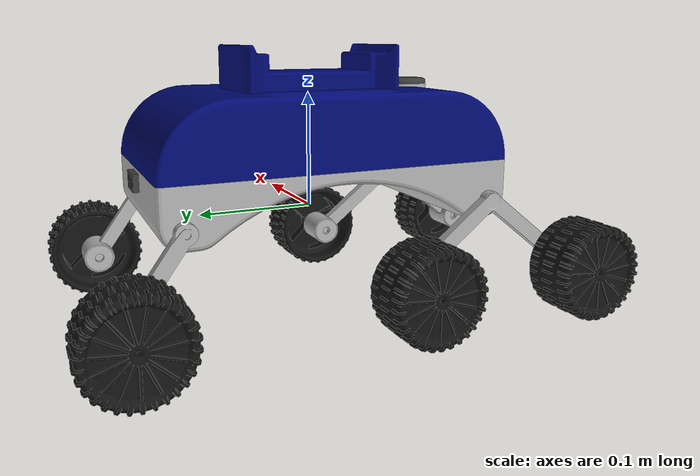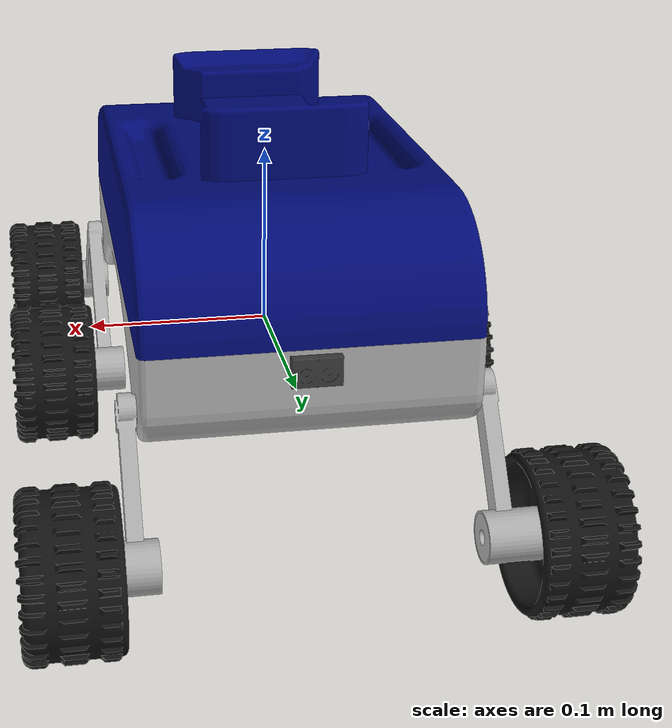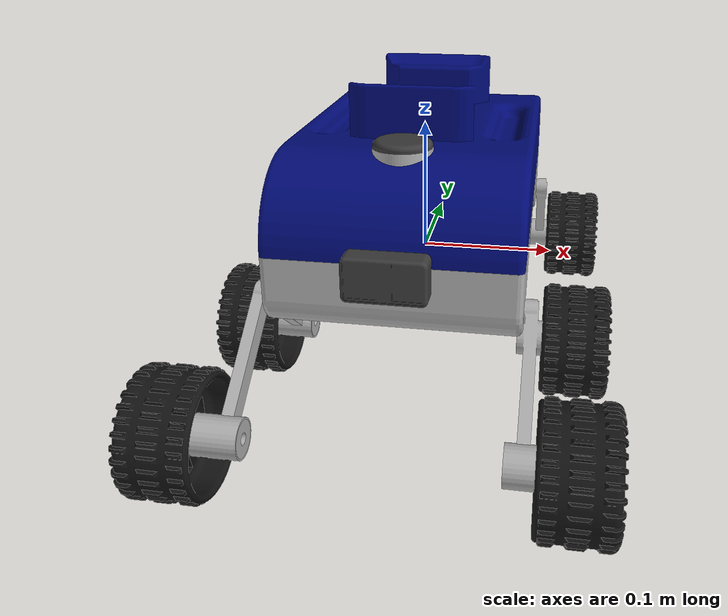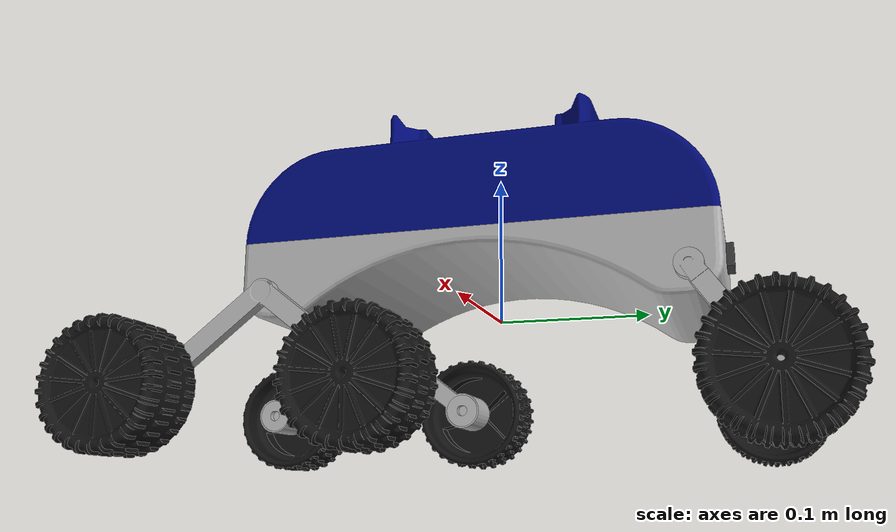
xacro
<?xml version="1.0" ?>
<robot name="rover_urdf_final" xmlns:xacro="http://www.ros.org/wiki/xacro">

<xacro:include filename="$(find rover_urdf_final_description)/urdf/materials.xacro" />
<xacro:include filename="$(find rover_urdf_final_description)/urdf/rover_urdf_final.trans" />
<xacro:include filename="$(find rover_urdf_final_description)/urdf/rover_urdf_final.gazebo" />
<link name="dummy">
</link>
<link name="base_link">
  <inertial>
    <origin xyz="9.73727173091227e-05 0.0012138128629390122 0.021729704936012603" rpy="0 0 0"/>
    <mass value="1.0018651197742647"/>
    <inertia ixx="0.011025" iyy="0.00289" izz="0.013559" ixy="-0.0" iyz="-1.3e-05" ixz="-0.0"/>
  </inertial>
  <visual>
    <origin xyz="0 0 0" rpy="0 0 0"/>
    <geometry>
      <mesh filename="package://rover_urdf_final_description/meshes/base_link.stl" scale="0.001 0.001 0.001"/>
    </geometry>
    <material name="silver"/>
  </visual>
  <collision>
    <origin xyz="0 0 0" rpy="0 0 0"/>
    <geometry>
      <mesh filename="package://rover_urdf_final_description/meshes/base_link.stl" scale="0.001 0.001 0.001"/>
    </geometry>
  </collision>
</link>

<link name="back_camera_1">
  <inertial>
    <origin xyz="3.701246455232982e-07 0.009962676017348127 -0.001998185934772738" rpy="0 0 0"/>
    <mass value="0.007636091553825904"/>
    <inertia ixx="0.0" iyy="1e-06" izz="1e-06" ixy="0.0" iyz="-0.0" ixz="-0.0"/>
  </inertial>
  <visual>
    <origin xyz="-9.7e-05 -0.135 -0.036" rpy="0 0 0"/>
    <geometry>
      <mesh filename="package://rover_urdf_final_description/meshes/back_camera_1.stl" scale="0.001 0.001 0.001"/>
    </geometry>
    <material name="gray060060060"/>
  </visual>
  <collision>
    <origin xyz="-9.7e-05 -0.135 -0.036" rpy="0 0 0"/>
    <geometry>
      <mesh filename="package://rover_urdf_final_description/meshes/back_camera_1.stl" scale="0.001 0.001 0.001"/>
    </geometry>
  </collision>
</link>

<link name="cover_1">
  <inertial>
    <origin xyz="3.7207553096138427e-07 -0.1479961400556021 0.045934334251646364" rpy="0 0 0"/>
    <mass value="0.6079631145490499"/>
    <inertia ixx="0.004866" iyy="0.002425" izz="0.006674" ixy="-0.0" iyz="1.2e-05" ixz="-0.0"/>
  </inertial>
  <visual>
    <origin xyz="-9.7e-05 -0.15 -0.044" rpy="0 0 0"/>
    <geometry>
      <mesh filename="package://rover_urdf_final_description/meshes/cover_1.stl" scale="0.001 0.001 0.001"/>
    </geometry>
    <material name="blue000010119"/>
  </visual>
  <collision>
    <origin xyz="-9.7e-05 -0.15 -0.044" rpy="0 0 0"/>
    <geometry>
      <mesh filename="package://rover_urdf_final_description/meshes/cover_1.stl" scale="0.001 0.001 0.001"/>
    </geometry>
  </collision>
</link>

<link name="lidar_1">
  <inertial>
    <origin xyz="1.301477999011825e-06 -0.00035540064376651803 0.0027852932894022048" rpy="0 0 0"/>
    <mass value="0.0025453141239423793"/>
    <inertia ixx="0.0" iyy="0.0" izz="1e-06" ixy="0.0" iyz="0.0" ixz="-0.0"/>
  </inertial>
  <visual>
    <origin xyz="-9.7e-05 0.095 -0.104" rpy="0 0 0"/>
    <geometry>
      <mesh filename="package://rover_urdf_final_description/meshes/lidar_1.stl" scale="0.001 0.001 0.001"/>
    </geometry>
    <material name="gray060060060"/>
  </visual>
  <collision>
    <origin xyz="-9.7e-05 0.095 -0.104" rpy="0 0 0"/>
    <geometry>
      <mesh filename="package://rover_urdf_final_description/meshes/lidar_1.stl" scale="0.001 0.001 0.001"/>
    </geometry>
  </collision>
</link>

<link name="lidar_base_1">
  <inertial>
    <origin xyz="3.72717310966419e-07 -5.8676480341191e-10 0.0020286500600458224" rpy="0 0 0"/>
    <mass value="0.007902916123399852"/>
    <inertia ixx="1e-06" iyy="1e-06" izz="2e-06" ixy="0.0" iyz="0.0" ixz="0.0"/>
  </inertial>
  <visual>
    <origin xyz="-9.7e-05 0.095 -0.099" rpy="0 0 0"/>
    <geometry>
      <mesh filename="package://rover_urdf_final_description/meshes/lidar_base_1.stl" scale="0.001 0.001 0.001"/>
    </geometry>
    <material name="silver"/>
  </visual>
  <collision>
    <origin xyz="-9.7e-05 0.095 -0.099" rpy="0 0 0"/>
    <geometry>
      <mesh filename="package://rover_urdf_final_description/meshes/lidar_base_1.stl" scale="0.001 0.001 0.001"/>
    </geometry>
  </collision>
</link>

<link name="battery1_1">
  <inertial>
    <origin xyz="3.727173095088854e-07 -0.007391188756240213 0.018000268857447127" rpy="0 0 0"/>
    <mass value="0.9478473192809529"/>
    <inertia ixx="0.002816" iyy="0.000605" izz="0.003091" ixy="0.0" iyz="-0.0" ixz="0.0"/>
  </inertial>
  <visual>
    <origin xyz="0.039903 -0.025 -0.039" rpy="0 0 0"/>
    <geometry>
      <mesh filename="package://rover_urdf_final_description/meshes/battery1_1.stl" scale="0.001 0.001 0.001"/>
    </geometry>
    <material name="gray110110110"/>
  </visual>
  <collision>
    <origin xyz="0.039903 -0.025 -0.039" rpy="0 0 0"/>
    <geometry>
      <mesh filename="package://rover_urdf_final_description/meshes/battery1_1.stl" scale="0.001 0.001 0.001"/>
    </geometry>
  </collision>
</link>

<link name="battery2_1">
  <inertial>
    <origin xyz="3.727173090301017e-07 -0.0073911887562401885 0.018000268857447065" rpy="0 0 0"/>
    <mass value="0.9478473192809556"/>
    <inertia ixx="0.002816" iyy="0.000605" izz="0.003091" ixy="-0.0" iyz="-0.0" ixz="-0.0"/>
  </inertial>
  <visual>
    <origin xyz="-0.040097 -0.025 -0.039" rpy="0 0 0"/>
    <geometry>
      <mesh filename="package://rover_urdf_final_description/meshes/battery2_1.stl" scale="0.001 0.001 0.001"/>
    </geometry>
    <material name="gray110110110"/>
  </visual>
  <collision>
    <origin xyz="-0.040097 -0.025 -0.039" rpy="0 0 0"/>
    <geometry>
      <mesh filename="package://rover_urdf_final_description/meshes/battery2_1.stl" scale="0.001 0.001 0.001"/>
    </geometry>
  </collision>
</link>

<link name="camera_1">
  <inertial>
    <origin xyz="3.7271731244317013e-07 -0.014608125530224086 0.014992719298696291" rpy="0 0 0"/>
    <mass value="0.04851657201774763"/>
    <inertia ixx="7e-06" iyy="1.6e-05" izz="1.5e-05" ixy="-0.0" iyz="-0.0" ixz="0.0"/>
  </inertial>
  <visual>
    <origin xyz="-9.7e-05 0.135 -0.024" rpy="0 0 0"/>
    <geometry>
      <mesh filename="package://rover_urdf_final_description/meshes/camera_1.stl" scale="0.001 0.001 0.001"/>
    </geometry>
    <material name="gray060060060"/>
  </visual>
  <collision>
    <origin xyz="-9.7e-05 0.135 -0.024" rpy="0 0 0"/>
    <geometry>
      <mesh filename="package://rover_urdf_final_description/meshes/camera_1.stl" scale="0.001 0.001 0.001"/>
    </geometry>
  </collision>
</link>

<link name="rov_leg12_1">
  <inertial>
    <origin xyz="0.005609983333545093 -1.438016372645734e-13 -0.03362118819507126" rpy="0 0 0"/>
    <mass value="0.022576009218286616"/>
    <inertia ixx="8.4e-05" iyy="1.6e-05" izz="7e-05" ixy="-0.0" iyz="0.0" ixz="2e-06"/>
  </inertial>
  <visual>
    <origin xyz="-0.085097 0.13125 -0.010238" rpy="0 0 0"/>
    <geometry>
      <mesh filename="package://rover_urdf_final_description/meshes/rov_leg12_1.stl" scale="0.001 0.001 0.001"/>
    </geometry>
    <material name="silver"/>
  </visual>
  <collision>
    <origin xyz="-0.085097 0.13125 -0.010238" rpy="0 0 0"/>
    <geometry>
      <mesh filename="package://rover_urdf_final_description/meshes/rov_leg12_1.stl" scale="0.001 0.001 0.001"/>
    </geometry>
  </collision>
</link>

<link name="rov_leg5_1">
  <inertial>
    <origin xyz="0.004802285907086354 0.01980785029740345 -0.02773074523797488" rpy="0 0 0"/>
    <mass value="0.01719642610594522"/>
    <inertia ixx="1.6e-05" iyy="1.1e-05" izz="6e-06" ixy="-1e-06" iyz="7e-06" ixz="1e-06"/>
  </inertial>
  <visual>
    <origin xyz="-0.085097 -0.13125 -0.010238" rpy="0 0 0"/>
    <geometry>
      <mesh filename="package://rover_urdf_final_description/meshes/rov_leg5_1.stl" scale="0.001 0.001 0.001"/>
    </geometry>
    <material name="silver"/>
  </visual>
  <collision>
    <origin xyz="-0.085097 -0.13125 -0.010238" rpy="0 0 0"/>
    <geometry>
      <mesh filename="package://rover_urdf_final_description/meshes/rov_leg5_1.stl" scale="0.001 0.001 0.001"/>
    </geometry>
  </collision>
</link>

<link name="rov_leg6_1">
  <inertial>
    <origin xyz="-0.004801540472467947 0.01980785029741436 -0.02773074523797489" rpy="0 0 0"/>
    <mass value="0.017196426105945264"/>
    <inertia ixx="1.6e-05" iyy="1.1e-05" izz="6e-06" ixy="1e-06" iyz="7e-06" ixz="-1e-06"/>
  </inertial>
  <visual>
    <origin xyz="0.084903 -0.13125 -0.010238" rpy="0 0 0"/>
    <geometry>
      <mesh filename="package://rover_urdf_final_description/meshes/rov_leg6_1.stl" scale="0.001 0.001 0.001"/>
    </geometry>
    <material name="silver"/>
  </visual>
  <collision>
    <origin xyz="0.084903 -0.13125 -0.010238" rpy="0 0 0"/>
    <geometry>
      <mesh filename="package://rover_urdf_final_description/meshes/rov_leg6_1.stl" scale="0.001 0.001 0.001"/>
    </geometry>
  </collision>
</link>

<link name="dc_motar1_1">
  <inertial>
    <origin xyz="0.017000372717312792 -4.331063132578805e-07 1.1269990159851195e-07" rpy="0 0 0"/>
    <mass value="0.10732685814311863"/>
    <inertia ixx="9e-06" iyy="1.5e-05" izz="1.5e-05" ixy="-0.0" iyz="0.0" ixz="0.0"/>
  </inertial>
  <visual>
    <origin xyz="-0.079297 0.210086 0.05047" rpy="0 0 0"/>
    <geometry>
      <mesh filename="package://rover_urdf_final_description/meshes/dc_motar1_1.stl" scale="0.001 0.001 0.001"/>
    </geometry>
    <material name="silver"/>
  </visual>
  <collision>
    <origin xyz="-0.079297 0.210086 0.05047" rpy="0 0 0"/>
    <geometry>
      <mesh filename="package://rover_urdf_final_description/meshes/dc_motar1_1.stl" scale="0.001 0.001 0.001"/>
    </geometry>
  </collision>
</link>

<link name="dc_motar2_1">
  <inertial>
    <origin xyz="0.017000372717312695 4.331062625137494e-07 1.1269990162626753e-07" rpy="0 0 0"/>
    <mass value="0.10732685814311868"/>
    <inertia ixx="9e-06" iyy="1.5e-05" izz="1.5e-05" ixy="0.0" iyz="0.0" ixz="0.0"/>
  </inertial>
  <visual>
    <origin xyz="-0.079297 0.052414 0.05047" rpy="0 0 0"/>
    <geometry>
      <mesh filename="package://rover_urdf_final_description/meshes/dc_motar2_1.stl" scale="0.001 0.001 0.001"/>
    </geometry>
    <material name="silver"/>
  </visual>
  <collision>
    <origin xyz="-0.079297 0.052414 0.05047" rpy="0 0 0"/>
    <geometry>
      <mesh filename="package://rover_urdf_final_description/meshes/dc_motar2_1.stl" scale="0.001 0.001 0.001"/>
    </geometry>
  </collision>
</link>

<link name="dc_motar4_1">
  <inertial>
    <origin xyz="-0.016999627282694274 4.331062625206883e-07 1.1269990164014532e-07" rpy="0 0 0"/>
    <mass value="0.1073268581431187"/>
    <inertia ixx="9e-06" iyy="1.5e-05" izz="1.5e-05" ixy="0.0" iyz="0.0" ixz="0.0"/>
  </inertial>
  <visual>
    <origin xyz="0.079103 0.052414 0.05047" rpy="0 0 0"/>
    <geometry>
      <mesh filename="package://rover_urdf_final_description/meshes/dc_motar4_1.stl" scale="0.001 0.001 0.001"/>
    </geometry>
    <material name="silver"/>
  </visual>
  <collision>
    <origin xyz="0.079103 0.052414 0.05047" rpy="0 0 0"/>
    <geometry>
      <mesh filename="package://rover_urdf_final_description/meshes/dc_motar4_1.stl" scale="0.001 0.001 0.001"/>
    </geometry>
  </collision>
</link>

<link name="dc_motar6_1">
  <inertial>
    <origin xyz="-0.016999627282694663 3.6552571042181015e-07 1.3344237432405537e-07" rpy="0 0 0"/>
    <mass value="0.1073268581431187"/>
    <inertia ixx="9e-06" iyy="1.5e-05" izz="1.5e-05" ixy="0.0" iyz="0.0" ixz="0.0"/>
  </inertial>
  <visual>
    <origin xyz="0.079103 -0.175169 0.051249" rpy="0 0 0"/>
    <geometry>
      <mesh filename="package://rover_urdf_final_description/meshes/dc_motar6_1.stl" scale="0.001 0.001 0.001"/>
    </geometry>
    <material name="silver"/>
  </visual>
  <collision>
    <origin xyz="0.079103 -0.175169 0.051249" rpy="0 0 0"/>
    <geometry>
      <mesh filename="package://rover_urdf_final_description/meshes/dc_motar6_1.stl" scale="0.001 0.001 0.001"/>
    </geometry>
  </collision>
</link>

<link name="rov_leg34_1">
  <inertial>
    <origin xyz="-0.0056092378989267 1.168232177661821e-13 -0.033621188195070345" rpy="0 0 0"/>
    <mass value="0.022576009218287667"/>
    <inertia ixx="8.4e-05" iyy="1.6e-05" izz="7e-05" ixy="0.0" iyz="-0.0" ixz="-2e-06"/>
  </inertial>
  <visual>
    <origin xyz="0.084903 0.13125 -0.010238" rpy="0 0 0"/>
    <geometry>
      <mesh filename="package://rover_urdf_final_description/meshes/rov_leg34_1.stl" scale="0.001 0.001 0.001"/>
    </geometry>
    <material name="silver"/>
  </visual>
  <collision>
    <origin xyz="0.084903 0.13125 -0.010238" rpy="0 0 0"/>
    <geometry>
      <mesh filename="package://rover_urdf_final_description/meshes/rov_leg34_1.stl" scale="0.001 0.001 0.001"/>
    </geometry>
  </collision>
</link>

<link name="dc_motar6_axle__1">
  <inertial>
    <origin xyz="-0.01229962728269142 3.6552552762358914e-07 1.3344237424772754e-07" rpy="0 0 0"/>
    <mass value="0.01894003378996254"/>
    <inertia ixx="0.0" iyy="4e-06" izz="4e-06" ixy="0.0" iyz="-0.0" ixz="0.0"/>
  </inertial>
  <visual>
    <origin xyz="0.096103 -0.175169 0.051249" rpy="0 0 0"/>
    <geometry>
      <mesh filename="package://rover_urdf_final_description/meshes/dc_motar6_axle__1.stl" scale="0.001 0.001 0.001"/>
    </geometry>
    <material name="silver"/>
  </visual>
  <collision>
    <origin xyz="0.096103 -0.175169 0.051249" rpy="0 0 0"/>
    <geometry>
      <mesh filename="package://rover_urdf_final_description/meshes/dc_motar6_axle__1.stl" scale="0.001 0.001 0.001"/>
    </geometry>
  </collision>
</link>

<link name="dc_motar4_axle_1">
  <inertial>
    <origin xyz="-0.012299627282694126 4.3310607952817826e-07 1.1269990164014532e-07" rpy="0 0 0"/>
    <mass value="0.018940033789962563"/>
    <inertia ixx="0.0" iyy="4e-06" izz="4e-06" ixy="0.0" iyz="-0.0" ixz="-0.0"/>
  </inertial>
  <visual>
    <origin xyz="0.096103 0.052414 0.05047" rpy="0 0 0"/>
    <geometry>
      <mesh filename="package://rover_urdf_final_description/meshes/dc_motar4_axle_1.stl" scale="0.001 0.001 0.001"/>
    </geometry>
    <material name="silver"/>
  </visual>
  <collision>
    <origin xyz="0.096103 0.052414 0.05047" rpy="0 0 0"/>
    <geometry>
      <mesh filename="package://rover_urdf_final_description/meshes/dc_motar4_axle_1.stl" scale="0.001 0.001 0.001"/>
    </geometry>
  </collision>
</link>

<link name="dc_motar2_axle_1">
  <inertial>
    <origin xyz="0.01230037271731274 4.331060795073616e-07 1.1269990161932864e-07" rpy="0 0 0"/>
    <mass value="0.01894003378996253"/>
    <inertia ixx="0.0" iyy="4e-06" izz="4e-06" ixy="-0.0" iyz="0.0" ixz="-0.0"/>
  </inertial>
  <visual>
    <origin xyz="-0.096297 0.052414 0.05047" rpy="0 0 0"/>
    <geometry>
      <mesh filename="package://rover_urdf_final_description/meshes/dc_motar2_axle_1.stl" scale="0.001 0.001 0.001"/>
    </geometry>
    <material name="silver"/>
  </visual>
  <collision>
    <origin xyz="-0.096297 0.052414 0.05047" rpy="0 0 0"/>
    <geometry>
      <mesh filename="package://rover_urdf_final_description/meshes/dc_motar2_axle_1.stl" scale="0.001 0.001 0.001"/>
    </geometry>
  </collision>
</link>

<link name="dc_motar1_axle_1">
  <inertial>
    <origin xyz="0.012300372717312713 -4.33106496416924e-07 1.1269990156381748e-07" rpy="0 0 0"/>
    <mass value="0.018940033789962514"/>
    <inertia ixx="0.0" iyy="4e-06" izz="4e-06" ixy="-0.0" iyz="0.0" ixz="-0.0"/>
  </inertial>
  <visual>
    <origin xyz="-0.096297 0.210086 0.05047" rpy="0 0 0"/>
    <geometry>
      <mesh filename="package://rover_urdf_final_description/meshes/dc_motar1_axle_1.stl" scale="0.001 0.001 0.001"/>
    </geometry>
    <material name="silver"/>
  </visual>
  <collision>
    <origin xyz="-0.096297 0.210086 0.05047" rpy="0 0 0"/>
    <geometry>
      <mesh filename="package://rover_urdf_final_description/meshes/dc_motar1_axle_1.stl" scale="0.001 0.001 0.001"/>
    </geometry>
  </collision>
</link>

<link name="dc_motar5_1">
  <inertial>
    <origin xyz="0.017000372717313028 3.655257104773213e-07 1.3344237431711647e-07" rpy="0 0 0"/>
    <mass value="0.10732685814311864"/>
    <inertia ixx="9e-06" iyy="1.5e-05" izz="1.5e-05" ixy="0.0" iyz="0.0" ixz="-0.0"/>
  </inertial>
  <visual>
    <origin xyz="-0.079297 -0.175169 0.051249" rpy="0 0 0"/>
    <geometry>
      <mesh filename="package://rover_urdf_final_description/meshes/dc_motar5_1.stl" scale="0.001 0.001 0.001"/>
    </geometry>
    <material name="silver"/>
  </visual>
  <collision>
    <origin xyz="-0.079297 -0.175169 0.051249" rpy="0 0 0"/>
    <geometry>
      <mesh filename="package://rover_urdf_final_description/meshes/dc_motar5_1.stl" scale="0.001 0.001 0.001"/>
    </geometry>
  </collision>
</link>

<link name="dc_motar5_axle_1">
  <inertial>
    <origin xyz="0.012300372717309965 3.65525527568078e-07 1.3344237426160532e-07" rpy="0 0 0"/>
    <mass value="0.018940033789962514"/>
    <inertia ixx="0.0" iyy="4e-06" izz="4e-06" ixy="-0.0" iyz="-0.0" ixz="-0.0"/>
  </inertial>
  <visual>
    <origin xyz="-0.096297 -0.175169 0.051249" rpy="0 0 0"/>
    <geometry>
      <mesh filename="package://rover_urdf_final_description/meshes/dc_motar5_axle_1.stl" scale="0.001 0.001 0.001"/>
    </geometry>
    <material name="silver"/>
  </visual>
  <collision>
    <origin xyz="-0.096297 -0.175169 0.051249" rpy="0 0 0"/>
    <geometry>
      <mesh filename="package://rover_urdf_final_description/meshes/dc_motar5_axle_1.stl" scale="0.001 0.001 0.001"/>
    </geometry>
  </collision>
</link>

<link name="wheel5_1">
  <inertial>
    <origin xyz="-0.006171448537778512 6.866532474281151e-07 9.644803717484551e-08" rpy="0 0 0"/>
    <mass value="0.14717103101615037"/>
    <inertia ixx="0.000148" iyy="9.4e-05" izz="9.4e-05" ixy="-0.0" iyz="-0.0" ixz="0.0"/>
  </inertial>
  <visual>
    <origin xyz="-0.132597 -0.175169 0.051249" rpy="0 0 0"/>
    <geometry>
      <mesh filename="package://rover_urdf_final_description/meshes/wheel5_1.stl" scale="0.001 0.001 0.001"/>
    </geometry>
    <material name="dark_gray"/>
  </visual>
  <collision>
    <origin xyz="-0.132597 -0.175169 0.051249" rpy="0 0 0"/>
    <geometry>
      <mesh filename="package://rover_urdf_final_description/meshes/wheel5_1.stl" scale="0.001 0.001 0.001"/>
    </geometry>
  </collision>
</link>

<link name="wheel6_1">
  <inertial>
    <origin xyz="0.006172299290002181 5.652758307828076e-07 1.1981204132288648e-07" rpy="0 0 0"/>
    <mass value="0.14717008048990332"/>
    <inertia ixx="0.000148" iyy="9.4e-05" izz="9.4e-05" ixy="0.0" iyz="-0.0" ixz="-0.0"/>
  </inertial>
  <visual>
    <origin xyz="0.132403 -0.175169 0.051249" rpy="0 0 0"/>
    <geometry>
      <mesh filename="package://rover_urdf_final_description/meshes/wheel6_1.stl" scale="0.001 0.001 0.001"/>
    </geometry>
    <material name="dark_gray"/>
  </visual>
  <collision>
    <origin xyz="0.132403 -0.175169 0.051249" rpy="0 0 0"/>
    <geometry>
      <mesh filename="package://rover_urdf_final_description/meshes/wheel6_1.stl" scale="0.001 0.001 0.001"/>
    </geometry>
  </collision>
</link>

<link name="wheel4_1">
  <inertial>
    <origin xyz="0.0055722992838171115 6.305114903029652e-07 9.907759485061618e-08" rpy="0 0 0"/>
    <mass value="0.1471700804899019"/>
    <inertia ixx="0.000148" iyy="9.4e-05" izz="9.4e-05" ixy="0.0" iyz="-0.0" ixz="-0.0"/>
  </inertial>
  <visual>
    <origin xyz="0.132403 0.052414 0.05047" rpy="0 0 0"/>
    <geometry>
      <mesh filename="package://rover_urdf_final_description/meshes/wheel4_1.stl" scale="0.001 0.001 0.001"/>
    </geometry>
    <material name="dark_gray"/>
  </visual>
  <collision>
    <origin xyz="0.132403 0.052414 0.05047" rpy="0 0 0"/>
    <geometry>
      <mesh filename="package://rover_urdf_final_description/meshes/wheel4_1.stl" scale="0.001 0.001 0.001"/>
    </geometry>
  </collision>
</link>

<link name="wheel3_1">
  <inertial>
    <origin xyz="0.005572299283817556 -2.373256621224229e-07 9.907759478816613e-08" rpy="0 0 0"/>
    <mass value="0.1471700804899019"/>
    <inertia ixx="0.000148" iyy="9.4e-05" izz="9.4e-05" ixy="0.0" iyz="-0.0" ixz="-0.0"/>
  </inertial>
  <visual>
    <origin xyz="0.132403 0.210086 0.05047" rpy="0 0 0"/>
    <geometry>
      <mesh filename="package://rover_urdf_final_description/meshes/wheel3_1.stl" scale="0.001 0.001 0.001"/>
    </geometry>
    <material name="dark_gray"/>
  </visual>
  <collision>
    <origin xyz="0.132403 0.210086 0.05047" rpy="0 0 0"/>
    <geometry>
      <mesh filename="package://rover_urdf_final_description/meshes/wheel3_1.stl" scale="0.001 0.001 0.001"/>
    </geometry>
  </collision>
</link>

<link name="wheel2_1">
  <inertial>
    <origin xyz="-0.005571448531594053 7.518889224705783e-07 7.571359062624738e-08" rpy="0 0 0"/>
    <mass value="0.14717103101615192"/>
    <inertia ixx="0.000148" iyy="9.4e-05" izz="9.4e-05" ixy="-0.0" iyz="-0.0" ixz="0.0"/>
  </inertial>
  <visual>
    <origin xyz="-0.132597 0.052414 0.05047" rpy="0 0 0"/>
    <geometry>
      <mesh filename="package://rover_urdf_final_description/meshes/wheel2_1.stl" scale="0.001 0.001 0.001"/>
    </geometry>
    <material name="dark_gray"/>
  </visual>
  <collision>
    <origin xyz="-0.132597 0.052414 0.05047" rpy="0 0 0"/>
    <geometry>
      <mesh filename="package://rover_urdf_final_description/meshes/wheel2_1.stl" scale="0.001 0.001 0.001"/>
    </geometry>
  </collision>
</link>

<link name="wheel1_1">
  <inertial>
    <origin xyz="-0.005571448531594747 -1.1594821924809651e-07 7.571359064706407e-08" rpy="0 0 0"/>
    <mass value="0.14717103101615112"/>
    <inertia ixx="0.000148" iyy="9.4e-05" izz="9.4e-05" ixy="-0.0" iyz="-0.0" ixz="0.0"/>
  </inertial>
  <visual>
    <origin xyz="-0.132597 0.210086 0.05047" rpy="0 0 0"/>
    <geometry>
      <mesh filename="package://rover_urdf_final_description/meshes/wheel1_1.stl" scale="0.001 0.001 0.001"/>
    </geometry>
    <material name="dark_gray"/>
  </visual>
  <collision>
    <origin xyz="-0.132597 0.210086 0.05047" rpy="0 0 0"/>
    <geometry>
      <mesh filename="package://rover_urdf_final_description/meshes/wheel1_1.stl" scale="0.001 0.001 0.001"/>
    </geometry>
  </collision>
</link>

<link name="dc_motar3_1">
  <inertial>
    <origin xyz="-0.016999627282694274 -4.331063132856361e-07 1.1269990162626753e-07" rpy="0 0 0"/>
    <mass value="0.10732685814311867"/>
    <inertia ixx="9e-06" iyy="1.5e-05" izz="1.5e-05" ixy="0.0" iyz="0.0" ixz="0.0"/>
  </inertial>
  <visual>
    <origin xyz="0.079103 0.210086 0.05047" rpy="0 0 0"/>
    <geometry>
      <mesh filename="package://rover_urdf_final_description/meshes/dc_motar3_1.stl" scale="0.001 0.001 0.001"/>
    </geometry>
    <material name="silver"/>
  </visual>
  <collision>
    <origin xyz="0.079103 0.210086 0.05047" rpy="0 0 0"/>
    <geometry>
      <mesh filename="package://rover_urdf_final_description/meshes/dc_motar3_1.stl" scale="0.001 0.001 0.001"/>
    </geometry>
  </collision>
</link>

<link name="dc_motar3_axle_1">
  <inertial>
    <origin xyz="-0.012299627282694167 -4.3310649650019073e-07 1.1269990155687859e-07" rpy="0 0 0"/>
    <mass value="0.01894003378996254"/>
    <inertia ixx="0.0" iyy="4e-06" izz="4e-06" ixy="0.0" iyz="0.0" ixz="0.0"/>
  </inertial>
  <visual>
    <origin xyz="0.096103 0.210086 0.05047" rpy="0 0 0"/>
    <geometry>
      <mesh filename="package://rover_urdf_final_description/meshes/dc_motar3_axle_1.stl" scale="0.001 0.001 0.001"/>
    </geometry>
    <material name="silver"/>
  </visual>
  <collision>
    <origin xyz="0.096103 0.210086 0.05047" rpy="0 0 0"/>
    <geometry>
      <mesh filename="package://rover_urdf_final_description/meshes/dc_motar3_axle_1.stl" scale="0.001 0.001 0.001"/>
    </geometry>
  </collision>
</link>

<!--###############_JOINTS_################-->

<joint name="dummy_joint" type="fixed">
  <parent link="dummy"/>
  <child link="base_link"/>
</joint>

<joint name="Rigid_1" type="fixed">
  <origin xyz="9.7e-05 0.135 0.036" rpy="0 0 0"/>
  <parent link="base_link"/>
  <child link="back_camera_1"/>
</joint>

<joint name="Revolute_1" type="revolute">
  <origin xyz="9.7e-05 0.15 0.044" rpy="0 0 0"/>
  <parent link="base_link"/>
  <child link="cover_1"/>
  <axis xyz="-1.0 0.0 0.0"/>
  <limit upper="1.570796" lower="0.0" effort="100" velocity="100"/>
</joint>

<joint name="Revolute_2" type="revolute">
  <origin xyz="0.0 0.0 0.005" rpy="0 0 0"/>
  <parent link="lidar_base_1"/>
  <child link="lidar_1"/>
  <axis xyz="0.0 0.0 1.0"/>
  <limit upper="1.832596" lower="-1.832596" effort="100" velocity="100"/>
</joint>

<joint name="Rigid_3" type="fixed">
  <origin xyz="0.0 -0.245 0.055" rpy="0 0 0"/>
  <parent link="cover_1"/>
  <child link="lidar_base_1"/>
</joint>

<joint name="Rigid_4" type="fixed">
  <origin xyz="-0.039903 0.025 0.039" rpy="0 0 0"/>
  <parent link="base_link"/>
  <child link="battery1_1"/>
</joint>

<joint name="Rigid_5" type="fixed">
  <origin xyz="0.040097 0.025 0.039" rpy="0 0 0"/>
  <parent link="base_link"/>
  <child link="battery2_1"/>
</joint>

<joint name="Rigid_6" type="fixed">
  <origin xyz="9.7e-05 -0.135 0.024" rpy="0 0 0"/>
  <parent link="base_link"/>
  <child link="camera_1"/>
</joint>

<joint name="Revolute_3" type="revolute">
  <origin xyz="0.085097 -0.13125 0.010238" rpy="0 0 0"/>
  <parent link="base_link"/>
  <child link="rov_leg12_1"/>
  <axis xyz="-1.0 0.0 0.0"/>
  <limit upper="0.785398" lower="-0.523599" effort="100" velocity="100"/>
</joint>

<joint name="Revolute_4" type="revolute">
  <origin xyz="0.085097 0.13125 0.010238" rpy="0 0 0"/>
  <parent link="base_link"/>
  <child link="rov_leg5_1"/>
  <axis xyz="-1.0 0.0 0.0"/>
  <limit upper="0.261799" lower="-0.523599" effort="100" velocity="100"/>
</joint>

<joint name="Revolute_5" type="revolute">
  <origin xyz="-0.084903 0.13125 0.010238" rpy="0 0 0"/>
  <parent link="base_link"/>
  <child link="rov_leg6_1"/>
  <axis xyz="1.0 0.0 0.0"/>
  <limit upper="0.523599" lower="-0.261799" effort="100" velocity="100"/>
</joint>

<joint name="Rigid_7" type="fixed">
  <origin xyz="-0.0058 -0.078836 -0.060708" rpy="0 0 0"/>
  <parent link="rov_leg12_1"/>
  <child link="dc_motar1_1"/>
</joint>

<joint name="Rigid_8" type="fixed">
  <origin xyz="-0.0058 0.078836 -0.060708" rpy="0 0 0"/>
  <parent link="rov_leg12_1"/>
  <child link="dc_motar2_1"/>
</joint>

<joint name="Rigid_9" type="fixed">
  <origin xyz="0.0058 0.078836 -0.060708" rpy="0 0 0"/>
  <parent link="rov_leg34_1"/>
  <child link="dc_motar4_1"/>
</joint>

<joint name="Rigid_10" type="fixed">
  <origin xyz="0.0058 0.043919 -0.061487" rpy="0 0 0"/>
  <parent link="rov_leg6_1"/>
  <child link="dc_motar6_1"/>
</joint>

<joint name="Revolute_6" type="revolute">
  <origin xyz="-0.084903 -0.13125 0.010238" rpy="0 0 0"/>
  <parent link="base_link"/>
  <child link="rov_leg34_1"/>
  <axis xyz="1.0 0.0 0.0"/>
  <limit upper="0.261799" lower="-0.785398" effort="100" velocity="100"/>
</joint>

<joint name="Revolute_7" type="continuous">
  <origin xyz="-0.017 0.0 0.0" rpy="0 0 0"/>
  <parent link="dc_motar6_1"/>
  <child link="dc_motar6_axle__1"/>
  <axis xyz="-1.0 0.0 0.0"/>
</joint>

<joint name="Revolute_8" type="continuous">
  <origin xyz="-0.017 0.0 0.0" rpy="0 0 0"/>
  <parent link="dc_motar4_1"/>
  <child link="dc_motar4_axle_1"/>
  <axis xyz="-1.0 0.0 0.0"/>
</joint>

<joint name="Revolute_9" type="continuous">
  <origin xyz="0.017 0.0 0.0" rpy="0 0 0"/>
  <parent link="dc_motar2_1"/>
  <child link="dc_motar2_axle_1"/>
  <axis xyz="-1.0 0.0 0.0"/>
</joint>

<joint name="Revolute_10" type="continuous">
  <origin xyz="0.017 0.0 0.0" rpy="0 0 0"/>
  <parent link="dc_motar1_1"/>
  <child link="dc_motar1_axle_1"/>
  <axis xyz="-1.0 0.0 0.0"/>
</joint>

<joint name="Rigid_11" type="fixed">
  <origin xyz="-0.0058 0.043919 -0.061487" rpy="0 0 0"/>
  <parent link="rov_leg5_1"/>
  <child link="dc_motar5_1"/>
</joint>

<joint name="Revolute_11" type="continuous">
  <origin xyz="0.017 0.0 0.0" rpy="0 0 0"/>
  <parent link="dc_motar5_1"/>
  <child link="dc_motar5_axle_1"/>
  <axis xyz="-1.0 0.0 0.0"/>
</joint>

<joint name="Rigid_12" type="fixed">
  <origin xyz="0.0363 0.0 0.0" rpy="0 0 0"/>
  <parent link="dc_motar5_axle_1"/>
  <child link="wheel5_1"/>
</joint>

<joint name="Rigid_13" type="fixed">
  <origin xyz="-0.0363 0.0 0.0" rpy="0 0 0"/>
  <parent link="dc_motar6_axle__1"/>
  <child link="wheel6_1"/>
</joint>

<joint name="Rigid_14" type="fixed">
  <origin xyz="-0.0363 0.0 0.0" rpy="0 0 0"/>
  <parent link="dc_motar4_axle_1"/>
  <child link="wheel4_1"/>
</joint>

<joint name="Rigid_15" type="fixed">
  <origin xyz="-0.0363 0.0 0.0" rpy="0 0 0"/>
  <parent link="dc_motar3_axle_1"/>
  <child link="wheel3_1"/>
</joint>

<joint name="Rigid_16" type="fixed">
  <origin xyz="0.0363 0.0 0.0" rpy="0 0 0"/>
  <parent link="dc_motar2_axle_1"/>
  <child link="wheel2_1"/>
</joint>

<joint name="Rigid_17" type="fixed">
  <origin xyz="0.0363 0.0 0.0" rpy="0 0 0"/>
  <parent link="dc_motar1_axle_1"/>
  <child link="wheel1_1"/>
</joint>

<joint name="Rigid_18" type="fixed">
  <origin xyz="0.0058 -0.078836 -0.060708" rpy="0 0 0"/>
  <parent link="rov_leg34_1"/>
  <child link="dc_motar3_1"/>
</joint>

<joint name="Revolute_12" type="continuous">
  <origin xyz="-0.017 0.0 0.0" rpy="0 0 0"/>
  <parent link="dc_motar3_1"/>
  <child link="dc_motar3_axle_1"/>
  <axis xyz="-1.0 0.0 0.0"/>
</joint>

</robot>

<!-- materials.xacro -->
<robot name="rover_urdf_final" xmlns:xacro="http://www.ros.org/wiki/xacro" >

<material name="black">
  <color rgba="0.00 0.00 0.00 1.000"/>
</material>

<material name="dark_gray">
  <color rgba="0.078 0.078 0.078 1.000"/>
</material>

<material name="silver">
  <color rgba="0.700 0.700 0.700 1.000"/>
</material>

<material name="blue000010119">
  <color rgba="0.00 0.040 0.470 1.000"/>
</material>

<material name="gray110110110">
  <color rgba="0.431 0.431 0.431 1.000"/>
</material>

<material name="gray060060060">
  <color rgba="0.235 0.235 0.235 1.000"/>
</material>

<material name="white">
  <color rgba="1.00 1.00 1.00 1.000"/>
</material>

</robot>

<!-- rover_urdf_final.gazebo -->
<robot name="rover_urdf_final" xmlns:xacro="http://www.ros.org/wiki/xacro" >

<xacro:property name="body_color" value="Gazebo/Silver" />

<gazebo>
  <plugin name="control" filename="libgazebo_ros_control.so"/>
</gazebo>
<gazebo reference="base_link">
  <material>${body_color}</material>
  <mu1>0.2</mu1>
  <mu2>0.2</mu2>
  <selfCollide>true</selfCollide>
  <gravity>true</gravity>
</gazebo>

<gazebo reference="back_camera_1">
  <material>${body_color}</material>
  <mu1>0.2</mu1>
  <mu2>0.2</mu2>
  <selfCollide>true</selfCollide>
</gazebo>

<gazebo reference="cover_1">
  <material>${body_color}</material>
  <mu1>0.2</mu1>
  <mu2>0.2</mu2>
  <selfCollide>true</selfCollide>
</gazebo>

<gazebo reference="lidar_1">
  <material>${body_color}</material>
  <mu1>0.2</mu1>
  <mu2>0.2</mu2>
  <selfCollide>true</selfCollide>
</gazebo>

<gazebo reference="lidar_base_1">
  <material>${body_color}</material>
  <mu1>0.2</mu1>
  <mu2>0.2</mu2>
  <selfCollide>true</selfCollide>
</gazebo>

<gazebo reference="battery1_1">
  <material>${body_color}</material>
  <mu1>0.2</mu1>
  <mu2>0.2</mu2>
  <selfCollide>true</selfCollide>
</gazebo>

<gazebo reference="battery2_1">
  <material>${body_color}</material>
  <mu1>0.2</mu1>
  <mu2>0.2</mu2>
  <selfCollide>true</selfCollide>
</gazebo>

<gazebo reference="camera_1">
  <material>${body_color}</material>
  <mu1>0.2</mu1>
  <mu2>0.2</mu2>
  <selfCollide>true</selfCollide>
</gazebo>

<gazebo reference="rov_leg12_1">
  <material>${body_color}</material>
  <mu1>0.2</mu1>
  <mu2>0.2</mu2>
  <selfCollide>true</selfCollide>
</gazebo>

<gazebo reference="rov_leg5_1">
  <material>${body_color}</material>
  <mu1>0.2</mu1>
  <mu2>0.2</mu2>
  <selfCollide>true</selfCollide>
</gazebo>

<gazebo reference="rov_leg6_1">
  <material>${body_color}</material>
  <mu1>0.2</mu1>
  <mu2>0.2</mu2>
  <selfCollide>true</selfCollide>
</gazebo>

<gazebo reference="dc_motar1_1">
  <material>${body_color}</material>
  <mu1>0.2</mu1>
  <mu2>0.2</mu2>
  <selfCollide>true</selfCollide>
</gazebo>

<gazebo reference="dc_motar2_1">
  <material>${body_color}</material>
  <mu1>0.2</mu1>
  <mu2>0.2</mu2>
  <selfCollide>true</selfCollide>
</gazebo>

<gazebo reference="dc_motar4_1">
  <material>${body_color}</material>
  <mu1>0.2</mu1>
  <mu2>0.2</mu2>
  <selfCollide>true</selfCollide>
</gazebo>

<gazebo reference="dc_motar6_1">
  <material>${body_color}</material>
  <mu1>0.2</mu1>
  <mu2>0.2</mu2>
  <selfCollide>true</selfCollide>
</gazebo>

<gazebo reference="rov_leg34_1">
  <material>${body_color}</material>
  <mu1>0.2</mu1>
  <mu2>0.2</mu2>
  <selfCollide>true</selfCollide>
</gazebo>

<gazebo reference="dc_motar6_axle__1">
  <material>${body_color}</material>
  <mu1>0.2</mu1>
  <mu2>0.2</mu2>
  <selfCollide>true</selfCollide>
</gazebo>

<gazebo reference="dc_motar4_axle_1">
  <material>${body_color}</material>
  <mu1>0.2</mu1>
  <mu2>0.2</mu2>
  <selfCollide>true</selfCollide>
</gazebo>

<gazebo reference="dc_motar2_axle_1">
  <material>${body_color}</material>
  <mu1>0.2</mu1>
  <mu2>0.2</mu2>
  <selfCollide>true</selfCollide>
</gazebo>

<gazebo reference="dc_motar1_axle_1">
  <material>${body_color}</material>
  <mu1>0.2</mu1>
  <mu2>0.2</mu2>
  <selfCollide>true</selfCollide>
</gazebo>

<gazebo reference="dc_motar5_1">
  <material>${body_color}</material>
  <mu1>0.2</mu1>
  <mu2>0.2</mu2>
  <selfCollide>true</selfCollide>
</gazebo>

<gazebo reference="dc_motar5_axle_1">
  <material>${body_color}</material>
  <mu1>0.2</mu1>
  <mu2>0.2</mu2>
  <selfCollide>true</selfCollide>
</gazebo>

<gazebo reference="wheel5_1">
  <material>${body_color}</material>
  <mu1>0.2</mu1>
  <mu2>0.2</mu2>
  <selfCollide>true</selfCollide>
</gazebo>

<gazebo reference="wheel6_1">
  <material>${body_color}</material>
  <mu1>0.2</mu1>
  <mu2>0.2</mu2>
  <selfCollide>true</selfCollide>
</gazebo>

<gazebo reference="wheel4_1">
  <material>${body_color}</material>
  <mu1>0.2</mu1>
  <mu2>0.2</mu2>
  <selfCollide>true</selfCollide>
</gazebo>

<gazebo reference="wheel3_1">
  <material>${body_color}</material>
  <mu1>0.2</mu1>
  <mu2>0.2</mu2>
  <selfCollide>true</selfCollide>
</gazebo>

<gazebo reference="wheel2_1">
  <material>${body_color}</material>
  <mu1>0.2</mu1>
  <mu2>0.2</mu2>
  <selfCollide>true</selfCollide>
</gazebo>

<gazebo reference="wheel1_1">
  <material>${body_color}</material>
  <mu1>0.2</mu1>
  <mu2>0.2</mu2>
  <selfCollide>true</selfCollide>
</gazebo>

<gazebo reference="dc_motar3_1">
  <material>${body_color}</material>
  <mu1>0.2</mu1>
  <mu2>0.2</mu2>
  <selfCollide>true</selfCollide>
</gazebo>

<gazebo reference="dc_motar3_axle_1">
  <material>${body_color}</material>
  <mu1>0.2</mu1>
  <mu2>0.2</mu2>
  <selfCollide>true</selfCollide>
</gazebo>

</robot>
